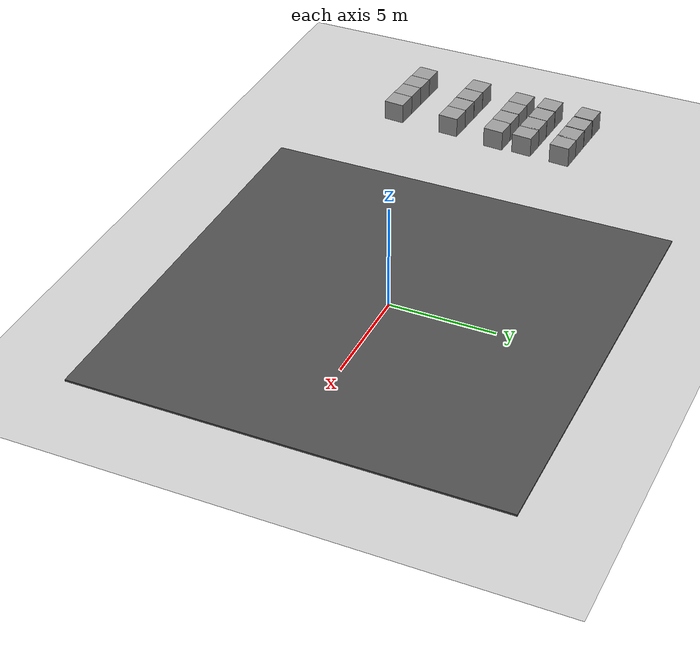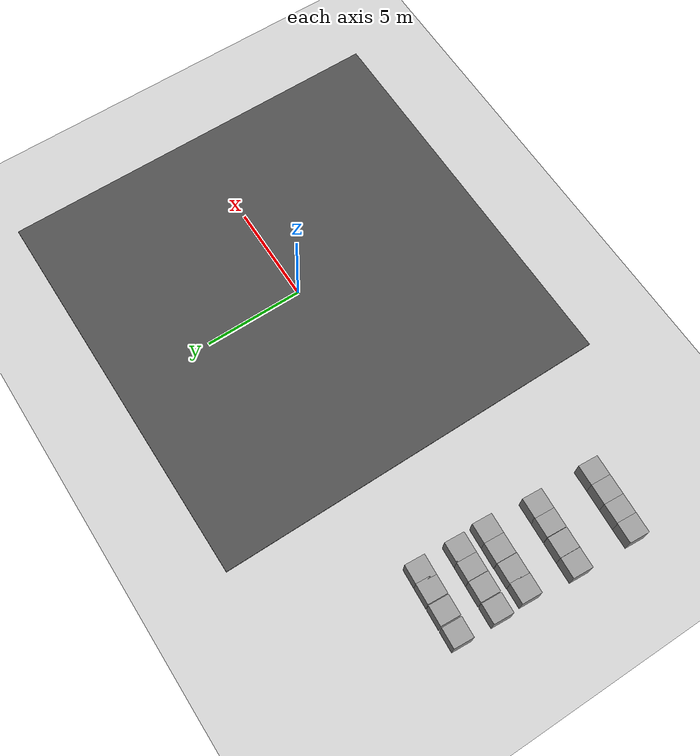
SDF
<sdf version="1.6">
 <world name="default">
  <model name="ground_plane">
   <static>1</static>
   <link name="link">
    <collision name="collision">
     <geometry><plane><normal>0 0 1</normal><size>100 100</size></plane></geometry>
     <surface><friction><ode><mu>100</mu><mu2>50</mu2></ode></friction></surface>
    </collision>
    <visual name="visual">
     <cast_shadows>0</cast_shadows>
     <geometry><plane><normal>0 0 1</normal><size>100 100</size></plane></geometry>
     <material>
      <script><uri>file://media/materials/scripts/gazebo.material</uri><name>Gazebo/Grey</name></script>
     </material>
    </visual>
    <velocity_decay><linear>0</linear><angular>0</angular></velocity_decay>
   </link>
  </model>
  <model name="asphalt_plane">
   <static>1</static>
   <link name="link">
    <collision name="collision"><geometry><box><size>20 20 0.1</size></box></geometry></collision>
    <visual name="visual">
     <cast_shadows>0</cast_shadows>
     <geometry><box><size>20 20 0.1</size></box></geometry>
     <material>
      <script>
       <uri>model://asphalt_plane/materials/scripts</uri>
       <uri>model://asphalt_plane/materials/textures</uri>
       <name>vrc/asphalt</name>
      </script>
     </material>
    </visual>
    <velocity_decay><linear>0</linear><angular>0</angular></velocity_decay>
   </link>
   <pose>0.276446 -0.119478 0 0 -0 0</pose>
  </model>
  <model name="unit_box_0_0">
   <link name="link_clone">
    <pose>-0.275526 -1.03543 0 0 -0 0</pose>
    <inertial>
     <mass>10</mass>
     <inertia>
      <ixx>0.166667</ixx>
      <ixy>0</ixy>
      <ixz>0</ixz>
      <iyy>0.166667</iyy>
      <iyz>0</iyz>
      <izz>0.166667</izz>
     </inertia>
    </inertial>
    <visual name="visual">
     <geometry><box><size>1 1 1</size></box></geometry>
     <material>
      <script><name>Gazebo/Grey</name><uri>file://media/materials/scripts/gazebo.material</uri></script>
      <ambient>0.3 0.3 0.3 1</ambient>
      <diffuse>0.7 0.7 0.7 1</diffuse>
      <specular>0.01 0.01 0.01 1</specular>
      <emissive>0 0 0 1</emissive>
      <shader type="vertex"><normal_map>__default__</normal_map></shader>
     </material>
    </visual>
    <collision name="collision">
     <geometry><box><size>1 1 1</size></box></geometry>
     <surface>
      <friction>
       <ode><mu>1</mu><mu2>1</mu2><fdir1>0 0 0</fdir1><slip1>0</slip1><slip2>0</slip2></ode>
       <torsional>
        <coefficient>1</coefficient>
        <patch_radius>0</patch_radius>
        <surface_radius>0</surface_radius>
        <use_patch_radius>1</use_patch_radius>
        <ode><slip>0</slip></ode>
       </torsional>
      </friction>
      <bounce><restitution_coefficient>0</restitution_coefficient><threshold>1e+06</threshold></bounce>
      <contact>
       <collide_without_contact>0</collide_without_contact>
       <collide_without_contact_bitmask>1</collide_without_contact_bitmask>
       <collide_bitmask>1</collide_bitmask>
       <ode>
        <soft_cfm>0</soft_cfm>
        <soft_erp>0.2</soft_erp>
        <kp>1e+13</kp>
        <kd>1</kd>
        <max_vel>0.01</max_vel>
        <min_depth>0</min_depth>
       </ode>
       <bullet>
        <split_impulse>1</split_impulse>
        <split_impulse_penetration_threshold>-0.01</split_impulse_penetration_threshold>
        <soft_cfm>0</soft_cfm>
        <soft_erp>0.2</soft_erp>
        <kp>1e+13</kp>
        <kd>1</kd>
       </bullet>
      </contact>
     </surface>
    </collision>
   </link>
   <link name="link_clone_0">
    <pose>-0.275526 -2.03291 -0 0 -0 0</pose>
    <inertial>
     <mass>10</mass>
     <inertia>
      <ixx>0.166667</ixx>
      <ixy>0</ixy>
      <ixz>0</ixz>
      <iyy>0.166667</iyy>
      <iyz>0</iyz>
      <izz>0.166667</izz>
     </inertia>
    </inertial>
    <visual name="visual">
     <geometry><box><size>1 1 1</size></box></geometry>
     <material>
      <script><name>Gazebo/Grey</name><uri>file://media/materials/scripts/gazebo.material</uri></script>
      <ambient>0.3 0.3 0.3 1</ambient>
      <diffuse>0.7 0.7 0.7 1</diffuse>
      <specular>0.01 0.01 0.01 1</specular>
      <emissive>0 0 0 1</emissive>
      <shader type="vertex"><normal_map>__default__</normal_map></shader>
     </material>
    </visual>
    <collision name="collision">
     <geometry><box><size>1 1 1</size></box></geometry>
     <surface>
      <friction>
       <ode><mu>1</mu><mu2>1</mu2><fdir1>0 0 0</fdir1><slip1>0</slip1><slip2>0</slip2></ode>
       <torsional>
        <coefficient>1</coefficient>
        <patch_radius>0</patch_radius>
        <surface_radius>0</surface_radius>
        <use_patch_radius>1</use_patch_radius>
        <ode><slip>0</slip></ode>
       </torsional>
      </friction>
      <bounce><restitution_coefficient>0</restitution_coefficient><threshold>1e+06</threshold></bounce>
      <contact>
       <collide_without_contact>0</collide_without_contact>
       <collide_without_contact_bitmask>1</collide_without_contact_bitmask>
       <collide_bitmask>1</collide_bitmask>
       <ode>
        <soft_cfm>0</soft_cfm>
        <soft_erp>0.2</soft_erp>
        <kp>1e+13</kp>
        <kd>1</kd>
        <max_vel>0.01</max_vel>
        <min_depth>0</min_depth>
       </ode>
       <bullet>
        <split_impulse>1</split_impulse>
        <split_impulse_penetration_threshold>-0.01</split_impulse_penetration_threshold>
        <soft_cfm>0</soft_cfm>
        <soft_erp>0.2</soft_erp>
        <kp>1e+13</kp>
        <kd>1</kd>
       </bullet>
      </contact>
     </surface>
    </collision>
   </link>
   <link name="link_clone_1">
    <pose>-0.275527 -3.02711 0 0 -0 0</pose>
    <inertial>
     <mass>10</mass>
     <inertia>
      <ixx>0.166667</ixx>
      <ixy>0</ixy>
      <ixz>0</ixz>
      <iyy>0.166667</iyy>
      <iyz>0</iyz>
      <izz>0.166667</izz>
     </inertia>
    </inertial>
    <visual name="visual">
     <geometry><box><size>1 1 1</size></box></geometry>
     <material>
      <script><name>Gazebo/Grey</name><uri>file://media/materials/scripts/gazebo.material</uri></script>
      <ambient>0.3 0.3 0.3 1</ambient>
      <diffuse>0.7 0.7 0.7 1</diffuse>
      <specular>0.01 0.01 0.01 1</specular>
      <emissive>0 0 0 1</emissive>
      <shader type="vertex"><normal_map>__default__</normal_map></shader>
     </material>
    </visual>
    <collision name="collision">
     <geometry><box><size>1 1 1</size></box></geometry>
     <surface>
      <friction>
       <ode><mu>1</mu><mu2>1</mu2><fdir1>0 0 0</fdir1><slip1>0</slip1><slip2>0</slip2></ode>
       <torsional>
        <coefficient>1</coefficient>
        <patch_radius>0</patch_radius>
        <surface_radius>0</surface_radius>
        <use_patch_radius>1</use_patch_radius>
        <ode><slip>0</slip></ode>
       </torsional>
      </friction>
      <bounce><restitution_coefficient>0</restitution_coefficient><threshold>1e+06</threshold></bounce>
      <contact>
       <collide_without_contact>0</collide_without_contact>
       <collide_without_contact_bitmask>1</collide_without_contact_bitmask>
       <collide_bitmask>1</collide_bitmask>
       <ode>
        <soft_cfm>0</soft_cfm>
        <soft_erp>0.2</soft_erp>
        <kp>1e+13</kp>
        <kd>1</kd>
        <max_vel>0.01</max_vel>
        <min_depth>0</min_depth>
       </ode>
       <bullet>
        <split_impulse>1</split_impulse>
        <split_impulse_penetration_threshold>-0.01</split_impulse_penetration_threshold>
        <soft_cfm>0</soft_cfm>
        <soft_erp>0.2</soft_erp>
        <kp>1e+13</kp>
        <kd>1</kd>
       </bullet>
      </contact>
     </surface>
    </collision>
   </link>
   <link name="link_clone_2">
    <pose>-0.275525 -3.99231 -0 0 -0 0</pose>
    <inertial>
     <mass>10</mass>
     <inertia>
      <ixx>0.166667</ixx>
      <ixy>0</ixy>
      <ixz>0</ixz>
      <iyy>0.166667</iyy>
      <iyz>0</iyz>
      <izz>0.166667</izz>
     </inertia>
    </inertial>
    <visual name="visual">
     <geometry><box><size>1 1 1</size></box></geometry>
     <material>
      <script><name>Gazebo/Grey</name><uri>file://media/materials/scripts/gazebo.material</uri></script>
      <ambient>0.3 0.3 0.3 1</ambient>
      <diffuse>0.7 0.7 0.7 1</diffuse>
      <specular>0.01 0.01 0.01 1</specular>
      <emissive>0 0 0 1</emissive>
      <shader type="vertex"><normal_map>__default__</normal_map></shader>
     </material>
    </visual>
    <collision name="collision">
     <geometry><box><size>1 1 1</size></box></geometry>
     <surface>
      <friction>
       <ode><mu>1</mu><mu2>1</mu2><fdir1>0 0 0</fdir1><slip1>0</slip1><slip2>0</slip2></ode>
       <torsional>
        <coefficient>1</coefficient>
        <patch_radius>0</patch_radius>
        <surface_radius>0</surface_radius>
        <use_patch_radius>1</use_patch_radius>
        <ode><slip>0</slip></ode>
       </torsional>
      </friction>
      <bounce><restitution_coefficient>0</restitution_coefficient><threshold>1e+06</threshold></bounce>
      <contact>
       <collide_without_contact>0</collide_without_contact>
       <collide_without_contact_bitmask>1</collide_without_contact_bitmask>
       <collide_bitmask>1</collide_bitmask>
       <ode>
        <soft_cfm>0</soft_cfm>
        <soft_erp>0.2</soft_erp>
        <kp>1e+13</kp>
        <kd>1</kd>
        <max_vel>0.01</max_vel>
        <min_depth>0</min_depth>
       </ode>
       <bullet>
        <split_impulse>1</split_impulse>
        <split_impulse_penetration_threshold>-0.01</split_impulse_penetration_threshold>
        <soft_cfm>0</soft_cfm>
        <soft_erp>0.2</soft_erp>
        <kp>1e+13</kp>
        <kd>1</kd>
       </bullet>
      </contact>
     </surface>
    </collision>
   </link>
   <link name="link_clone_5">
    <pose>-3.27553 -1.08805 0 0 -0 0</pose>
    <inertial>
     <mass>10</mass>
     <inertia>
      <ixx>0.166667</ixx>
      <ixy>0</ixy>
      <ixz>0</ixz>
      <iyy>0.166667</iyy>
      <iyz>0</iyz>
      <izz>0.166667</izz>
     </inertia>
    </inertial>
    <visual name="visual">
     <geometry><box><size>1 1 1</size></box></geometry>
     <material>
      <script><name>Gazebo/Grey</name><uri>file://media/materials/scripts/gazebo.material</uri></script>
      <ambient>0.3 0.3 0.3 1</ambient>
      <diffuse>0.7 0.7 0.7 1</diffuse>
      <specular>0.01 0.01 0.01 1</specular>
      <emissive>0 0 0 1</emissive>
      <shader type="vertex"><normal_map>__default__</normal_map></shader>
     </material>
    </visual>
    <collision name="collision">
     <geometry><box><size>1 1 1</size></box></geometry>
     <surface>
      <friction>
       <ode><mu>1</mu><mu2>1</mu2><fdir1>0 0 0</fdir1><slip1>0</slip1><slip2>0</slip2></ode>
       <torsional>
        <coefficient>1</coefficient>
        <patch_radius>0</patch_radius>
        <surface_radius>0</surface_radius>
        <use_patch_radius>1</use_patch_radius>
        <ode><slip>0</slip></ode>
       </torsional>
      </friction>
      <bounce><restitution_coefficient>0</restitution_coefficient><threshold>1e+06</threshold></bounce>
      <contact>
       <collide_without_contact>0</collide_without_contact>
       <collide_without_contact_bitmask>1</collide_without_contact_bitmask>
       <collide_bitmask>1</collide_bitmask>
       <ode>
        <soft_cfm>0</soft_cfm>
        <soft_erp>0.2</soft_erp>
        <kp>1e+13</kp>
        <kd>1</kd>
        <max_vel>0.01</max_vel>
        <min_depth>0</min_depth>
       </ode>
       <bullet>
        <split_impulse>1</split_impulse>
        <split_impulse_penetration_threshold>-0.01</split_impulse_penetration_threshold>
        <soft_cfm>0</soft_cfm>
        <soft_erp>0.2</soft_erp>
        <kp>1e+13</kp>
        <kd>1</kd>
       </bullet>
      </contact>
     </surface>
    </collision>
   </link>
   <link name="link_clone_5_clone">
    <pose>-5.7952 -0.976277 -0 0 -0 0</pose>
    <inertial>
     <mass>10</mass>
     <inertia>
      <ixx>0.166667</ixx>
      <ixy>0</ixy>
      <ixz>0</ixz>
      <iyy>0.166667</iyy>
      <iyz>0</iyz>
      <izz>0.166667</izz>
     </inertia>
    </inertial>
    <visual name="visual">
     <geometry><box><size>1 1 1</size></box></geometry>
     <material>
      <script><name>Gazebo/Grey</name><uri>file://media/materials/scripts/gazebo.material</uri></script>
      <ambient>0.3 0.3 0.3 1</ambient>
      <diffuse>0.7 0.7 0.7 1</diffuse>
      <specular>0.01 0.01 0.01 1</specular>
      <emissive>0 0 0 1</emissive>
      <shader type="vertex"><normal_map>__default__</normal_map></shader>
     </material>
    </visual>
    <collision name="collision">
     <geometry><box><size>1 1 1</size></box></geometry>
     <surface>
      <friction>
       <ode><mu>1</mu><mu2>1</mu2><fdir1>0 0 0</fdir1><slip1>0</slip1><slip2>0</slip2></ode>
       <torsional>
        <coefficient>1</coefficient>
        <patch_radius>0</patch_radius>
        <surface_radius>0</surface_radius>
        <use_patch_radius>1</use_patch_radius>
        <ode><slip>0</slip></ode>
       </torsional>
      </friction>
      <bounce><restitution_coefficient>0</restitution_coefficient><threshold>1e+06</threshold></bounce>
      <contact>
       <collide_without_contact>0</collide_without_contact>
       <collide_without_contact_bitmask>1</collide_without_contact_bitmask>
       <collide_bitmask>1</collide_bitmask>
       <ode>
        <soft_cfm>0</soft_cfm>
        <soft_erp>0.2</soft_erp>
        <kp>1e+13</kp>
        <kd>1</kd>
        <max_vel>0.01</max_vel>
        <min_depth>0</min_depth>
       </ode>
       <bullet>
        <split_impulse>1</split_impulse>
        <split_impulse_penetration_threshold>-0.01</split_impulse_penetration_threshold>
        <soft_cfm>0</soft_cfm>
        <soft_erp>0.2</soft_erp>
        <kp>1e+13</kp>
        <kd>1</kd>
       </bullet>
      </contact>
     </surface>
    </collision>
   </link>
   <link name="link_clone_5_clone_0">
    <pose>-5.79544 -1.94811 -0 0 -0 0</pose>
    <inertial>
     <mass>10</mass>
     <inertia>
      <ixx>0.166667</ixx>
      <ixy>0</ixy>
      <ixz>0</ixz>
      <iyy>0.166667</iyy>
      <iyz>0</iyz>
      <izz>0.166667</izz>
     </inertia>
    </inertial>
    <visual name="visual">
     <geometry><box><size>1 1 1</size></box></geometry>
     <material>
      <script><name>Gazebo/Grey</name><uri>file://media/materials/scripts/gazebo.material</uri></script>
      <ambient>0.3 0.3 0.3 1</ambient>
      <diffuse>0.7 0.7 0.7 1</diffuse>
      <specular>0.01 0.01 0.01 1</specular>
      <emissive>0 0 0 1</emissive>
      <shader type="vertex"><normal_map>__default__</normal_map></shader>
     </material>
    </visual>
    <collision name="collision">
     <geometry><box><size>1 1 1</size></box></geometry>
     <surface>
      <friction>
       <ode><mu>1</mu><mu2>1</mu2><fdir1>0 0 0</fdir1><slip1>0</slip1><slip2>0</slip2></ode>
       <torsional>
        <coefficient>1</coefficient>
        <patch_radius>0</patch_radius>
        <surface_radius>0</surface_radius>
        <use_patch_radius>1</use_patch_radius>
        <ode><slip>0</slip></ode>
       </torsional>
      </friction>
      <bounce><restitution_coefficient>0</restitution_coefficient><threshold>1e+06</threshold></bounce>
      <contact>
       <collide_without_contact>0</collide_without_contact>
       <collide_without_contact_bitmask>1</collide_without_contact_bitmask>
       <collide_bitmask>1</collide_bitmask>
       <ode>
        <soft_cfm>0</soft_cfm>
        <soft_erp>0.2</soft_erp>
        <kp>1e+13</kp>
        <kd>1</kd>
        <max_vel>0.01</max_vel>
        <min_depth>0</min_depth>
       </ode>
       <bullet>
        <split_impulse>1</split_impulse>
        <split_impulse_penetration_threshold>-0.01</split_impulse_penetration_threshold>
        <soft_cfm>0</soft_cfm>
        <soft_erp>0.2</soft_erp>
        <kp>1e+13</kp>
        <kd>1</kd>
       </bullet>
      </contact>
     </surface>
    </collision>
   </link>
   <link name="link_clone_5_clone_1">
    <pose>-5.78223 -2.96079 -0 0 -0 0</pose>
    <inertial>
     <mass>10</mass>
     <inertia>
      <ixx>0.166667</ixx>
      <ixy>0</ixy>
      <ixz>0</ixz>
      <iyy>0.166667</iyy>
      <iyz>0</iyz>
      <izz>0.166667</izz>
     </inertia>
    </inertial>
    <visual name="visual">
     <geometry><box><size>1 1 1</size></box></geometry>
     <material>
      <script><name>Gazebo/Grey</name><uri>file://media/materials/scripts/gazebo.material</uri></script>
      <ambient>0.3 0.3 0.3 1</ambient>
      <diffuse>0.7 0.7 0.7 1</diffuse>
      <specular>0.01 0.01 0.01 1</specular>
      <emissive>0 0 0 1</emissive>
      <shader type="vertex"><normal_map>__default__</normal_map></shader>
     </material>
    </visual>
    <collision name="collision">
     <geometry><box><size>1 1 1</size></box></geometry>
     <surface>
      <friction>
       <ode><mu>1</mu><mu2>1</mu2><fdir1>0 0 0</fdir1><slip1>0</slip1><slip2>0</slip2></ode>
       <torsional>
        <coefficient>1</coefficient>
        <patch_radius>0</patch_radius>
        <surface_radius>0</surface_radius>
        <use_patch_radius>1</use_patch_radius>
        <ode><slip>0</slip></ode>
       </torsional>
      </friction>
      <bounce><restitution_coefficient>0</restitution_coefficient><threshold>1e+06</threshold></bounce>
      <contact>
       <collide_without_contact>0</collide_without_contact>
       <collide_without_contact_bitmask>1</collide_without_contact_bitmask>
       <collide_bitmask>1</collide_bitmask>
       <ode>
        <soft_cfm>0</soft_cfm>
        <soft_erp>0.2</soft_erp>
        <kp>1e+13</kp>
        <kd>1</kd>
        <max_vel>0.01</max_vel>
        <min_depth>0</min_depth>
       </ode>
       <bullet>
        <split_impulse>1</split_impulse>
        <split_impulse_penetration_threshold>-0.01</split_impulse_penetration_threshold>
        <soft_cfm>0</soft_cfm>
        <soft_erp>0.2</soft_erp>
        <kp>1e+13</kp>
        <kd>1</kd>
       </bullet>
      </contact>
     </surface>
    </collision>
   </link>
   <link name="link_clone_5_clone_2_clone">
    <pose>-5.76821 -3.92948 -0 0 -0 0</pose>
    <inertial>
     <mass>10</mass>
     <inertia>
      <ixx>0.166667</ixx>
      <ixy>0</ixy>
      <ixz>0</ixz>
      <iyy>0.166667</iyy>
      <iyz>0</iyz>
      <izz>0.166667</izz>
     </inertia>
    </inertial>
    <visual name="visual">
     <geometry><box><size>1 1 1</size></box></geometry>
     <material>
      <script><name>Gazebo/Grey</name><uri>file://media/materials/scripts/gazebo.material</uri></script>
      <ambient>0.3 0.3 0.3 1</ambient>
      <diffuse>0.7 0.7 0.7 1</diffuse>
      <specular>0.01 0.01 0.01 1</specular>
      <emissive>0 0 0 1</emissive>
      <shader type="vertex"><normal_map>__default__</normal_map></shader>
     </material>
    </visual>
    <collision name="collision">
     <geometry><box><size>1 1 1</size></box></geometry>
     <surface>
      <friction>
       <ode><mu>1</mu><mu2>1</mu2><fdir1>0 0 0</fdir1><slip1>0</slip1><slip2>0</slip2></ode>
       <torsional>
        <coefficient>1</coefficient>
        <patch_radius>0</patch_radius>
        <surface_radius>0</surface_radius>
        <use_patch_radius>1</use_patch_radius>
        <ode><slip>0</slip></ode>
       </torsional>
      </friction>
      <bounce><restitution_coefficient>0</restitution_coefficient><threshold>1e+06</threshold></bounce>
      <contact>
       <collide_without_contact>0</collide_without_contact>
       <collide_without_contact_bitmask>1</collide_without_contact_bitmask>
       <collide_bitmask>1</collide_bitmask>
       <ode>
        <soft_cfm>0</soft_cfm>
        <soft_erp>0.2</soft_erp>
        <kp>1e+13</kp>
        <kd>1</kd>
        <max_vel>0.01</max_vel>
        <min_depth>0</min_depth>
       </ode>
       <bullet>
        <split_impulse>1</split_impulse>
        <split_impulse_penetration_threshold>-0.01</split_impulse_penetration_threshold>
        <soft_cfm>0</soft_cfm>
        <soft_erp>0.2</soft_erp>
        <kp>1e+13</kp>
        <kd>1</kd>
       </bullet>
      </contact>
     </surface>
    </collision>
   </link>
   <link name="link_clone_5_clone_2_clone_1_clone">
    <pose>-7.27553 -1.09078 -0 0 -0 0</pose>
    <inertial>
     <mass>10</mass>
     <inertia>
      <ixx>0.166667</ixx>
      <ixy>0</ixy>
      <ixz>0</ixz>
      <iyy>0.166667</iyy>
      <iyz>0</iyz>
      <izz>0.166667</izz>
     </inertia>
    </inertial>
    <visual name="visual">
     <geometry><box><size>1 1 1</size></box></geometry>
     <material>
      <script><name>Gazebo/Grey</name><uri>file://media/materials/scripts/gazebo.material</uri></script>
      <ambient>0.3 0.3 0.3 1</ambient>
      <diffuse>0.7 0.7 0.7 1</diffuse>
      <specular>0.01 0.01 0.01 1</specular>
      <emissive>0 0 0 1</emissive>
      <shader type="vertex"><normal_map>__default__</normal_map></shader>
     </material>
    </visual>
    <collision name="collision">
     <geometry><box><size>1 1 1</size></box></geometry>
     <surface>
      <friction>
       <ode><mu>1</mu><mu2>1</mu2><fdir1>0 0 0</fdir1><slip1>0</slip1><slip2>0</slip2></ode>
       <torsional>
        <coefficient>1</coefficient>
        <patch_radius>0</patch_radius>
        <surface_radius>0</surface_radius>
        <use_patch_radius>1</use_patch_radius>
        <ode><slip>0</slip></ode>
       </torsional>
      </friction>
      <bounce><restitution_coefficient>0</restitution_coefficient><threshold>1e+06</threshold></bounce>
      <contact>
       <collide_without_contact>0</collide_without_contact>
       <collide_without_contact_bitmask>1</collide_without_contact_bitmask>
       <collide_bitmask>1</collide_bitmask>
       <ode>
        <soft_cfm>0</soft_cfm>
        <soft_erp>0.2</soft_erp>
        <kp>1e+13</kp>
        <kd>1</kd>
        <max_vel>0.01</max_vel>
        <min_depth>0</min_depth>
       </ode>
       <bullet>
        <split_impulse>1</split_impulse>
        <split_impulse_penetration_threshold>-0.01</split_impulse_penetration_threshold>
        <soft_cfm>0</soft_cfm>
        <soft_erp>0.2</soft_erp>
        <kp>1e+13</kp>
        <kd>1</kd>
       </bullet>
      </contact>
     </surface>
    </collision>
   </link>
   <link name="link_clone_5_clone_2_clone_1_clone_0">
    <pose>-7.27553 -2.01494 -0 0 -0 0</pose>
    <inertial>
     <mass>10</mass>
     <inertia>
      <ixx>0.166667</ixx>
      <ixy>0</ixy>
      <ixz>0</ixz>
      <iyy>0.166667</iyy>
      <iyz>0</iyz>
      <izz>0.166667</izz>
     </inertia>
    </inertial>
    <visual name="visual">
     <geometry><box><size>1 1 1</size></box></geometry>
     <material>
      <script><name>Gazebo/Grey</name><uri>file://media/materials/scripts/gazebo.material</uri></script>
      <ambient>0.3 0.3 0.3 1</ambient>
      <diffuse>0.7 0.7 0.7 1</diffuse>
      <specular>0.01 0.01 0.01 1</specular>
      <emissive>0 0 0 1</emissive>
      <shader type="vertex"><normal_map>__default__</normal_map></shader>
     </material>
    </visual>
    <collision name="collision">
     <geometry><box><size>1 1 1</size></box></geometry>
     <surface>
      <friction>
       <ode><mu>1</mu><mu2>1</mu2><fdir1>0 0 0</fdir1><slip1>0</slip1><slip2>0</slip2></ode>
       <torsional>
        <coefficient>1</coefficient>
        <patch_radius>0</patch_radius>
        <surface_radius>0</surface_radius>
        <use_patch_radius>1</use_patch_radius>
        <ode><slip>0</slip></ode>
       </torsional>
      </friction>
      <bounce><restitution_coefficient>0</restitution_coefficient><threshold>1e+06</threshold></bounce>
      <contact>
       <collide_without_contact>0</collide_without_contact>
       <collide_without_contact_bitmask>1</collide_without_contact_bitmask>
       <collide_bitmask>1</collide_bitmask>
       <ode>
        <soft_cfm>0</soft_cfm>
        <soft_erp>0.2</soft_erp>
        <kp>1e+13</kp>
        <kd>1</kd>
        <max_vel>0.01</max_vel>
        <min_depth>0</min_depth>
       </ode>
       <bullet>
        <split_impulse>1</split_impulse>
        <split_impulse_penetration_threshold>-0.01</split_impulse_penetration_threshold>
        <soft_cfm>0</soft_cfm>
        <soft_erp>0.2</soft_erp>
        <kp>1e+13</kp>
        <kd>1</kd>
       </bullet>
      </contact>
     </surface>
    </collision>
   </link>
   <link name="link_clone_5_clone_2_clone_1_clone_1">
    <pose>-7.27553 -3.02656 -0 0 -0 0</pose>
    <inertial>
     <mass>10</mass>
     <inertia>
      <ixx>0.166667</ixx>
      <ixy>0</ixy>
      <ixz>0</ixz>
      <iyy>0.166667</iyy>
      <iyz>0</iyz>
      <izz>0.166667</izz>
     </inertia>
    </inertial>
    <visual name="visual">
     <geometry><box><size>1 1 1</size></box></geometry>
     <material>
      <script><name>Gazebo/Grey</name><uri>file://media/materials/scripts/gazebo.material</uri></script>
      <ambient>0.3 0.3 0.3 1</ambient>
      <diffuse>0.7 0.7 0.7 1</diffuse>
      <specular>0.01 0.01 0.01 1</specular>
      <emissive>0 0 0 1</emissive>
      <shader type="vertex"><normal_map>__default__</normal_map></shader>
     </material>
    </visual>
    <collision name="collision">
     <geometry><box><size>1 1 1</size></box></geometry>
     <surface>
      <friction>
       <ode><mu>1</mu><mu2>1</mu2><fdir1>0 0 0</fdir1><slip1>0</slip1><slip2>0</slip2></ode>
       <torsional>
        <coefficient>1</coefficient>
        <patch_radius>0</patch_radius>
        <surface_radius>0</surface_radius>
        <use_patch_radius>1</use_patch_radius>
        <ode><slip>0</slip></ode>
       </torsional>
      </friction>
      <bounce><restitution_coefficient>0</restitution_coefficient><threshold>1e+06</threshold></bounce>
      <contact>
       <collide_without_contact>0</collide_without_contact>
       <collide_without_contact_bitmask>1</collide_without_contact_bitmask>
       <collide_bitmask>1</collide_bitmask>
       <ode>
        <soft_cfm>0</soft_cfm>
        <soft_erp>0.2</soft_erp>
        <kp>1e+13</kp>
        <kd>1</kd>
        <max_vel>0.01</max_vel>
        <min_depth>0</min_depth>
       </ode>
       <bullet>
        <split_impulse>1</split_impulse>
        <split_impulse_penetration_threshold>-0.01</split_impulse_penetration_threshold>
        <soft_cfm>0</soft_cfm>
        <soft_erp>0.2</soft_erp>
        <kp>1e+13</kp>
        <kd>1</kd>
       </bullet>
      </contact>
     </surface>
    </collision>
   </link>
   <link name="link_clone_5_clone_2_clone_1_clone_10">
    <pose>-9.27553 -4.10487 0 0 -0 0</pose>
    <inertial>
     <mass>10</mass>
     <inertia>
      <ixx>0.166667</ixx>
      <ixy>0</ixy>
      <ixz>0</ixz>
      <iyy>0.166667</iyy>
      <iyz>0</iyz>
      <izz>0.166667</izz>
     </inertia>
    </inertial>
    <visual name="visual">
     <geometry><box><size>1 1 1</size></box></geometry>
     <material>
      <script><name>Gazebo/Grey</name><uri>file://media/materials/scripts/gazebo.material</uri></script>
      <ambient>0.3 0.3 0.3 1</ambient>
      <diffuse>0.7 0.7 0.7 1</diffuse>
      <specular>0.01 0.01 0.01 1</specular>
      <emissive>0 0 0 1</emissive>
      <shader type="vertex"><normal_map>__default__</normal_map></shader>
     </material>
    </visual>
    <collision name="collision">
     <geometry><box><size>1 1 1</size></box></geometry>
     <surface>
      <friction>
       <ode><mu>1</mu><mu2>1</mu2><fdir1>0 0 0</fdir1><slip1>0</slip1><slip2>0</slip2></ode>
       <torsional>
        <coefficient>1</coefficient>
        <patch_radius>0</patch_radius>
        <surface_radius>0</surface_radius>
        <use_patch_radius>1</use_patch_radius>
        <ode><slip>0</slip></ode>
       </torsional>
      </friction>
      <bounce><restitution_coefficient>0</restitution_coefficient><threshold>1e+06</threshold></bounce>
      <contact>
       <collide_without_contact>0</collide_without_contact>
       <collide_without_contact_bitmask>1</collide_without_contact_bitmask>
       <collide_bitmask>1</collide_bitmask>
       <ode>
        <soft_cfm>0</soft_cfm>
        <soft_erp>0.2</soft_erp>
        <kp>1e+13</kp>
        <kd>1</kd>
        <max_vel>0.01</max_vel>
        <min_depth>0</min_depth>
       </ode>
       <bullet>
        <split_impulse>1</split_impulse>
        <split_impulse_penetration_threshold>-0.01</split_impulse_penetration_threshold>
        <soft_cfm>0</soft_cfm>
        <soft_erp>0.2</soft_erp>
        <kp>1e+13</kp>
        <kd>1</kd>
       </bullet>
      </contact>
     </surface>
    </collision>
   </link>
   <link name="link_clone_5_clone_2_clone_1_clone_2">
    <pose>-7.27553 -4.06127 -0 0 -0 0</pose>
    <inertial>
     <mass>10</mass>
     <inertia>
      <ixx>0.166667</ixx>
      <ixy>0</ixy>
      <ixz>0</ixz>
      <iyy>0.166667</iyy>
      <iyz>0</iyz>
      <izz>0.166667</izz>
     </inertia>
    </inertial>
    <visual name="visual">
     <geometry><box><size>1 1 1</size></box></geometry>
     <material>
      <script><name>Gazebo/Grey</name><uri>file://media/materials/scripts/gazebo.material</uri></script>
      <ambient>0.3 0.3 0.3 1</ambient>
      <diffuse>0.7 0.7 0.7 1</diffuse>
      <specular>0.01 0.01 0.01 1</specular>
      <emissive>0 0 0 1</emissive>
      <shader type="vertex"><normal_map>__default__</normal_map></shader>
     </material>
    </visual>
    <collision name="collision">
     <geometry><box><size>1 1 1</size></box></geometry>
     <surface>
      <friction>
       <ode><mu>1</mu><mu2>1</mu2><fdir1>0 0 0</fdir1><slip1>0</slip1><slip2>0</slip2></ode>
       <torsional>
        <coefficient>1</coefficient>
        <patch_radius>0</patch_radius>
        <surface_radius>0</surface_radius>
        <use_patch_radius>1</use_patch_radius>
        <ode><slip>0</slip></ode>
       </torsional>
      </friction>
      <bounce><restitution_coefficient>0</restitution_coefficient><threshold>1e+06</threshold></bounce>
      <contact>
       <collide_without_contact>0</collide_without_contact>
       <collide_without_contact_bitmask>1</collide_without_contact_bitmask>
       <collide_bitmask>1</collide_bitmask>
       <ode>
        <soft_cfm>0</soft_cfm>
        <soft_erp>0.2</soft_erp>
        <kp>1e+13</kp>
        <kd>1</kd>
        <max_vel>0.01</max_vel>
        <min_depth>0</min_depth>
       </ode>
       <bullet>
        <split_impulse>1</split_impulse>
        <split_impulse_penetration_threshold>-0.01</split_impulse_penetration_threshold>
        <soft_cfm>0</soft_cfm>
        <soft_erp>0.2</soft_erp>
        <kp>1e+13</kp>
        <kd>1</kd>
       </bullet>
      </contact>
     </surface>
    </collision>
   </link>
   <link name="link_clone_5_clone_2_clone_1_clone_7">
    <pose>-9.27553 -1.09033 -0 0 -0 0</pose>
    <inertial>
     <mass>10</mass>
     <inertia>
      <ixx>0.166667</ixx>
      <ixy>0</ixy>
      <ixz>0</ixz>
      <iyy>0.166667</iyy>
      <iyz>0</iyz>
      <izz>0.166667</izz>
     </inertia>
    </inertial>
    <visual name="visual">
     <geometry><box><size>1 1 1</size></box></geometry>
     <material>
      <script><name>Gazebo/Grey</name><uri>file://media/materials/scripts/gazebo.material</uri></script>
      <ambient>0.3 0.3 0.3 1</ambient>
      <diffuse>0.7 0.7 0.7 1</diffuse>
      <specular>0.01 0.01 0.01 1</specular>
      <emissive>0 0 0 1</emissive>
      <shader type="vertex"><normal_map>__default__</normal_map></shader>
     </material>
    </visual>
    <collision name="collision">
     <geometry><box><size>1 1 1</size></box></geometry>
     <surface>
      <friction>
       <ode><mu>1</mu><mu2>1</mu2><fdir1>0 0 0</fdir1><slip1>0</slip1><slip2>0</slip2></ode>
       <torsional>
        <coefficient>1</coefficient>
        <patch_radius>0</patch_radius>
        <surface_radius>0</surface_radius>
        <use_patch_radius>1</use_patch_radius>
        <ode><slip>0</slip></ode>
       </torsional>
      </friction>
      <bounce><restitution_coefficient>0</restitution_coefficient><threshold>1e+06</threshold></bounce>
      <contact>
       <collide_without_contact>0</collide_without_contact>
       <collide_without_contact_bitmask>1</collide_without_contact_bitmask>
       <collide_bitmask>1</collide_bitmask>
       <ode>
        <soft_cfm>0</soft_cfm>
        <soft_erp>0.2</soft_erp>
        <kp>1e+13</kp>
        <kd>1</kd>
        <max_vel>0.01</max_vel>
        <min_depth>0</min_depth>
       </ode>
       <bullet>
        <split_impulse>1</split_impulse>
        <split_impulse_penetration_threshold>-0.01</split_impulse_penetration_threshold>
        <soft_cfm>0</soft_cfm>
        <soft_erp>0.2</soft_erp>
        <kp>1e+13</kp>
        <kd>1</kd>
       </bullet>
      </contact>
     </surface>
    </collision>
   </link>
   <link name="link_clone_5_clone_2_clone_1_clone_8">
    <pose>-9.27553 -2.01471 -0 0 -0 0</pose>
    <inertial>
     <mass>10</mass>
     <inertia>
      <ixx>0.166667</ixx>
      <ixy>0</ixy>
      <ixz>0</ixz>
      <iyy>0.166667</iyy>
      <iyz>0</iyz>
      <izz>0.166667</izz>
     </inertia>
    </inertial>
    <visual name="visual">
     <geometry><box><size>1 1 1</size></box></geometry>
     <material>
      <script><name>Gazebo/Grey</name><uri>file://media/materials/scripts/gazebo.material</uri></script>
      <ambient>0.3 0.3 0.3 1</ambient>
      <diffuse>0.7 0.7 0.7 1</diffuse>
      <specular>0.01 0.01 0.01 1</specular>
      <emissive>0 0 0 1</emissive>
      <shader type="vertex"><normal_map>__default__</normal_map></shader>
     </material>
    </visual>
    <collision name="collision">
     <geometry><box><size>1 1 1</size></box></geometry>
     <surface>
      <friction>
       <ode><mu>1</mu><mu2>1</mu2><fdir1>0 0 0</fdir1><slip1>0</slip1><slip2>0</slip2></ode>
       <torsional>
        <coefficient>1</coefficient>
        <patch_radius>0</patch_radius>
        <surface_radius>0</surface_radius>
        <use_patch_radius>1</use_patch_radius>
        <ode><slip>0</slip></ode>
       </torsional>
      </friction>
      <bounce><restitution_coefficient>0</restitution_coefficient><threshold>1e+06</threshold></bounce>
      <contact>
       <collide_without_contact>0</collide_without_contact>
       <collide_without_contact_bitmask>1</collide_without_contact_bitmask>
       <collide_bitmask>1</collide_bitmask>
       <ode>
        <soft_cfm>0</soft_cfm>
        <soft_erp>0.2</soft_erp>
        <kp>1e+13</kp>
        <kd>1</kd>
        <max_vel>0.01</max_vel>
        <min_depth>0</min_depth>
       </ode>
       <bullet>
        <split_impulse>1</split_impulse>
        <split_impulse_penetration_threshold>-0.01</split_impulse_penetration_threshold>
        <soft_cfm>0</soft_cfm>
        <soft_erp>0.2</soft_erp>
        <kp>1e+13</kp>
        <kd>1</kd>
       </bullet>
      </contact>
     </surface>
    </collision>
   </link>
   <link name="link_clone_5_clone_2_clone_1_clone_9">
    <pose>-9.27553 -3.04825 0 0 -0 0</pose>
    <inertial>
     <mass>10</mass>
     <inertia>
      <ixx>0.166667</ixx>
      <ixy>0</ixy>
      <ixz>0</ixz>
      <iyy>0.166667</iyy>
      <iyz>0</iyz>
      <izz>0.166667</izz>
     </inertia>
    </inertial>
    <visual name="visual">
     <geometry><box><size>1 1 1</size></box></geometry>
     <material>
      <script><name>Gazebo/Grey</name><uri>file://media/materials/scripts/gazebo.material</uri></script>
      <ambient>0.3 0.3 0.3 1</ambient>
      <diffuse>0.7 0.7 0.7 1</diffuse>
      <specular>0.01 0.01 0.01 1</specular>
      <emissive>0 0 0 1</emissive>
      <shader type="vertex"><normal_map>__default__</normal_map></shader>
     </material>
    </visual>
    <collision name="collision">
     <geometry><box><size>1 1 1</size></box></geometry>
     <surface>
      <friction>
       <ode><mu>1</mu><mu2>1</mu2><fdir1>0 0 0</fdir1><slip1>0</slip1><slip2>0</slip2></ode>
       <torsional>
        <coefficient>1</coefficient>
        <patch_radius>0</patch_radius>
        <surface_radius>0</surface_radius>
        <use_patch_radius>1</use_patch_radius>
        <ode><slip>0</slip></ode>
       </torsional>
      </friction>
      <bounce><restitution_coefficient>0</restitution_coefficient><threshold>1e+06</threshold></bounce>
      <contact>
       <collide_without_contact>0</collide_without_contact>
       <collide_without_contact_bitmask>1</collide_without_contact_bitmask>
       <collide_bitmask>1</collide_bitmask>
       <ode>
        <soft_cfm>0</soft_cfm>
        <soft_erp>0.2</soft_erp>
        <kp>1e+13</kp>
        <kd>1</kd>
        <max_vel>0.01</max_vel>
        <min_depth>0</min_depth>
       </ode>
       <bullet>
        <split_impulse>1</split_impulse>
        <split_impulse_penetration_threshold>-0.01</split_impulse_penetration_threshold>
        <soft_cfm>0</soft_cfm>
        <soft_erp>0.2</soft_erp>
        <kp>1e+13</kp>
        <kd>1</kd>
       </bullet>
      </contact>
     </surface>
    </collision>
   </link>
   <link name="link_clone_6">
    <pose>-3.27553 -2.05017 -0 0 -0 0</pose>
    <inertial>
     <mass>10</mass>
     <inertia>
      <ixx>0.166667</ixx>
      <ixy>0</ixy>
      <ixz>0</ixz>
      <iyy>0.166667</iyy>
      <iyz>0</iyz>
      <izz>0.166667</izz>
     </inertia>
    </inertial>
    <visual name="visual">
     <geometry><box><size>1 1 1</size></box></geometry>
     <material>
      <script><name>Gazebo/Grey</name><uri>file://media/materials/scripts/gazebo.material</uri></script>
      <ambient>0.3 0.3 0.3 1</ambient>
      <diffuse>0.7 0.7 0.7 1</diffuse>
      <specular>0.01 0.01 0.01 1</specular>
      <emissive>0 0 0 1</emissive>
      <shader type="vertex"><normal_map>__default__</normal_map></shader>
     </material>
    </visual>
    <collision name="collision">
     <geometry><box><size>1 1 1</size></box></geometry>
     <surface>
      <friction>
       <ode><mu>1</mu><mu2>1</mu2><fdir1>0 0 0</fdir1><slip1>0</slip1><slip2>0</slip2></ode>
       <torsional>
        <coefficient>1</coefficient>
        <patch_radius>0</patch_radius>
        <surface_radius>0</surface_radius>
        <use_patch_radius>1</use_patch_radius>
        <ode><slip>0</slip></ode>
       </torsional>
      </friction>
      <bounce><restitution_coefficient>0</restitution_coefficient><threshold>1e+06</threshold></bounce>
      <contact>
       <collide_without_contact>0</collide_without_contact>
       <collide_without_contact_bitmask>1</collide_without_contact_bitmask>
       <collide_bitmask>1</collide_bitmask>
       <ode>
        <soft_cfm>0</soft_cfm>
        <soft_erp>0.2</soft_erp>
        <kp>1e+13</kp>
        <kd>1</kd>
        <max_vel>0.01</max_vel>
        <min_depth>0</min_depth>
       </ode>
       <bullet>
        <split_impulse>1</split_impulse>
        <split_impulse_penetration_threshold>-0.01</split_impulse_penetration_threshold>
        <soft_cfm>0</soft_cfm>
        <soft_erp>0.2</soft_erp>
        <kp>1e+13</kp>
        <kd>1</kd>
       </bullet>
      </contact>
     </surface>
    </collision>
   </link>
   <link name="link_clone_7">
    <pose>-3.27553 -3.07075 0 0 -0 0</pose>
    <inertial>
     <mass>10</mass>
     <inertia>
      <ixx>0.166667</ixx>
      <ixy>0</ixy>
      <ixz>0</ixz>
      <iyy>0.166667</iyy>
      <iyz>0</iyz>
      <izz>0.166667</izz>
     </inertia>
    </inertial>
    <visual name="visual">
     <geometry><box><size>1 1 1</size></box></geometry>
     <material>
      <script><name>Gazebo/Grey</name><uri>file://media/materials/scripts/gazebo.material</uri></script>
      <ambient>0.3 0.3 0.3 1</ambient>
      <diffuse>0.7 0.7 0.7 1</diffuse>
      <specular>0.01 0.01 0.01 1</specular>
      <emissive>0 0 0 1</emissive>
      <shader type="vertex"><normal_map>__default__</normal_map></shader>
     </material>
    </visual>
    <collision name="collision">
     <geometry><box><size>1 1 1</size></box></geometry>
     <surface>
      <friction>
       <ode><mu>1</mu><mu2>1</mu2><fdir1>0 0 0</fdir1><slip1>0</slip1><slip2>0</slip2></ode>
       <torsional>
        <coefficient>1</coefficient>
        <patch_radius>0</patch_radius>
        <surface_radius>0</surface_radius>
        <use_patch_radius>1</use_patch_radius>
        <ode><slip>0</slip></ode>
       </torsional>
      </friction>
      <bounce><restitution_coefficient>0</restitution_coefficient><threshold>1e+06</threshold></bounce>
      <contact>
       <collide_without_contact>0</collide_without_contact>
       <collide_without_contact_bitmask>1</collide_without_contact_bitmask>
       <collide_bitmask>1</collide_bitmask>
       <ode>
        <soft_cfm>0</soft_cfm>
        <soft_erp>0.2</soft_erp>
        <kp>1e+13</kp>
        <kd>1</kd>
        <max_vel>0.01</max_vel>
        <min_depth>0</min_depth>
       </ode>
       <bullet>
        <split_impulse>1</split_impulse>
        <split_impulse_penetration_threshold>-0.01</split_impulse_penetration_threshold>
        <soft_cfm>0</soft_cfm>
        <soft_erp>0.2</soft_erp>
        <kp>1e+13</kp>
        <kd>1</kd>
       </bullet>
      </contact>
     </surface>
    </collision>
   </link>
   <link name="link_clone_8">
    <pose>-3.27553 -4.07745 0 0 -0 0</pose>
    <inertial>
     <mass>10</mass>
     <inertia>
      <ixx>0.166667</ixx>
      <ixy>0</ixy>
      <ixz>0</ixz>
      <iyy>0.166667</iyy>
      <iyz>0</iyz>
      <izz>0.166667</izz>
     </inertia>
    </inertial>
    <visual name="visual">
     <geometry><box><size>1 1 1</size></box></geometry>
     <material>
      <script><name>Gazebo/Grey</name><uri>file://media/materials/scripts/gazebo.material</uri></script>
      <ambient>0.3 0.3 0.3 1</ambient>
      <diffuse>0.7 0.7 0.7 1</diffuse>
      <specular>0.01 0.01 0.01 1</specular>
      <emissive>0 0 0 1</emissive>
      <shader type="vertex"><normal_map>__default__</normal_map></shader>
     </material>
    </visual>
    <collision name="collision">
     <geometry><box><size>1 1 1</size></box></geometry>
     <surface>
      <friction>
       <ode><mu>1</mu><mu2>1</mu2><fdir1>0 0 0</fdir1><slip1>0</slip1><slip2>0</slip2></ode>
       <torsional>
        <coefficient>1</coefficient>
        <patch_radius>0</patch_radius>
        <surface_radius>0</surface_radius>
        <use_patch_radius>1</use_patch_radius>
        <ode><slip>0</slip></ode>
       </torsional>
      </friction>
      <bounce><restitution_coefficient>0</restitution_coefficient><threshold>1e+06</threshold></bounce>
      <contact>
       <collide_without_contact>0</collide_without_contact>
       <collide_without_contact_bitmask>1</collide_without_contact_bitmask>
       <collide_bitmask>1</collide_bitmask>
       <ode>
        <soft_cfm>0</soft_cfm>
        <soft_erp>0.2</soft_erp>
        <kp>1e+13</kp>
        <kd>1</kd>
        <max_vel>0.01</max_vel>
        <min_depth>0</min_depth>
       </ode>
       <bullet>
        <split_impulse>1</split_impulse>
        <split_impulse_penetration_threshold>-0.01</split_impulse_penetration_threshold>
        <soft_cfm>0</soft_cfm>
        <soft_erp>0.2</soft_erp>
        <kp>1e+13</kp>
        <kd>1</kd>
       </bullet>
      </contact>
     </surface>
    </collision>
   </link>
   <static>0</static>
   <pose>-13.8391 -6.41623 0.54997 -3e-06 7.3e-05 -1.63507</pose>
  </model>
 </world>
</sdf>
